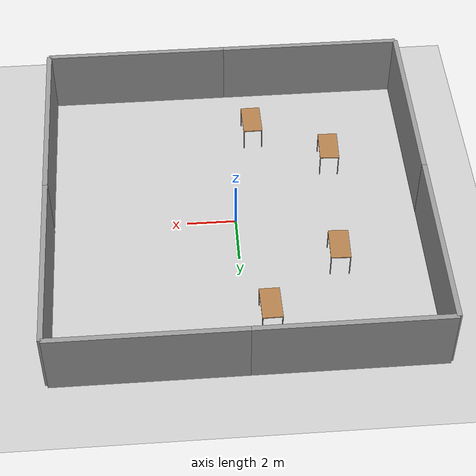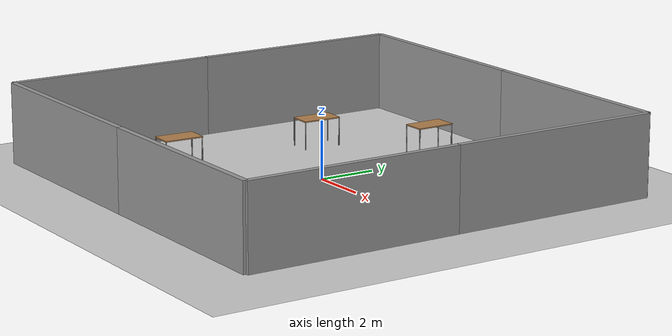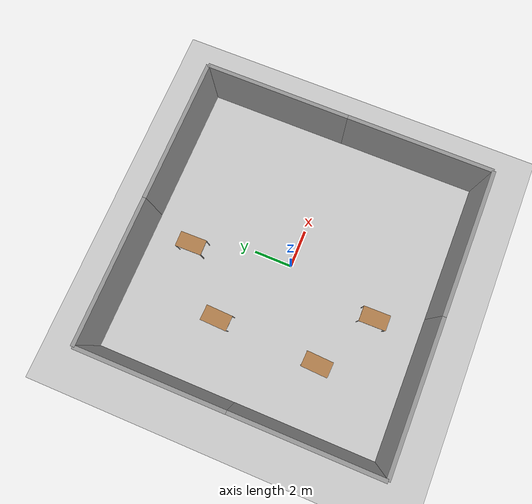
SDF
<sdf version="1.6">
 <world name="default">
  <light name="sun" type="directional">
   <pose>0 0 10 0 -0 0</pose>
   <diffuse>0.8 0.8 0.8 1</diffuse>
   <specular>0.1 0.1 0.1 1</specular>
   <attenuation>
    <range>1000</range>
    <constant>0.9</constant>
    <linear>0.01</linear>
    <quadratic>0.001</quadratic>
   </attenuation>
   <direction>-0.5 0.5 -1</direction>
  </light>
  <model name="ground_plane">
   <static>1</static>
   <link name="link">
    <collision name="collision">
     <geometry><plane><normal>0 0 1</normal><size>100 100</size></plane></geometry>
     <surface><friction><ode><mu>100</mu><mu2>50</mu2></ode></friction></surface>
    </collision>
    <visual name="visual">
     <cast_shadows>0</cast_shadows>
     <geometry><plane><normal>0 0 1</normal><size>100 100</size></plane></geometry>
     <material>
      <script><uri>file://media/materials/scripts/gazebo.material</uri><name>Gazebo/Grey</name></script>
     </material>
    </visual>
   </link>
  </model>
  <gravity>0 0 -9.8</gravity>
  <magnetic_field>6e-06 2.3e-05 -4.2e-05</magnetic_field>
  <atmosphere type="adiabatic"/>
  <physics name="default_physics" default="0" type="ode">
   <max_step_size>0.001</max_step_size>
   <real_time_factor>1</real_time_factor>
   <real_time_update_rate>1000</real_time_update_rate>
  </physics>
  <scene><ambient>0.4 0.4 0.4 1</ambient><background>0.7 0.7 0.7 1</background><shadows>1</shadows></scene>
  <spherical_coordinates>
   <surface_model>EARTH_WGS84</surface_model>
   <latitude_deg>0</latitude_deg>
   <longitude_deg>0</longitude_deg>
   <elevation>0</elevation>
   <heading_deg>0</heading_deg>
  </spherical_coordinates>
  <model name="grey_wall">
   <static>1</static>
   <link name="link">
    <pose>0 0 1.4 0 -0 0</pose>
    <collision name="collision"><geometry><box><size>7.5 0.2 2.8</size></box></geometry></collision>
    <visual name="visual">
     <cast_shadows>0</cast_shadows>
     <geometry><box><size>7.5 0.2 2.8</size></box></geometry>
     <material>
      <script>
       <uri>model://grey_wall/materials/scripts</uri>
       <uri>model://grey_wall/materials/textures</uri>
       <name>vrc/grey_wall</name>
      </script>
     </material>
    </visual>
   </link>
   <pose>3.75 7.5 0 0 -0 0</pose>
  </model>
  <model name="grey_wall_0">
   <static>1</static>
   <link name="link">
    <pose>0 0 1.4 0 -0 0</pose>
    <collision name="collision"><geometry><box><size>7.5 0.2 2.8</size></box></geometry></collision>
    <visual name="visual">
     <cast_shadows>0</cast_shadows>
     <geometry><box><size>7.5 0.2 2.8</size></box></geometry>
     <material>
      <script>
       <uri>model://grey_wall/materials/scripts</uri>
       <uri>model://grey_wall/materials/textures</uri>
       <name>vrc/grey_wall</name>
      </script>
     </material>
    </visual>
   </link>
   <pose>-3.75 7.5 0 0 -0 0</pose>
  </model>
  <model name="grey_wall_2">
   <static>1</static>
   <link name="link">
    <pose>0 0 1.4 0 -0 0</pose>
    <collision name="collision"><geometry><box><size>7.5 0.2 2.8</size></box></geometry></collision>
    <visual name="visual">
     <cast_shadows>0</cast_shadows>
     <geometry><box><size>7.5 0.2 2.8</size></box></geometry>
     <material>
      <script>
       <uri>model://grey_wall/materials/scripts</uri>
       <uri>model://grey_wall/materials/textures</uri>
       <name>vrc/grey_wall</name>
      </script>
     </material>
    </visual>
   </link>
   <pose>-3.75 -7.5 0 0 -0 0</pose>
  </model>
  <model name="grey_wall_3">
   <static>1</static>
   <link name="link">
    <pose>0 0 1.4 0 -0 0</pose>
    <collision name="collision"><geometry><box><size>7.5 0.2 2.8</size></box></geometry></collision>
    <visual name="visual">
     <cast_shadows>0</cast_shadows>
     <geometry><box><size>7.5 0.2 2.8</size></box></geometry>
     <material>
      <script>
       <uri>model://grey_wall/materials/scripts</uri>
       <uri>model://grey_wall/materials/textures</uri>
       <name>vrc/grey_wall</name>
      </script>
     </material>
    </visual>
   </link>
   <pose>3.75 -7.5 0 0 -0 0</pose>
  </model>
  <model name="grey_wall_4">
   <static>1</static>
   <link name="link">
    <pose>0 0 1.4 0 -0 0</pose>
    <collision name="collision"><geometry><box><size>7.5 0.2 2.8</size></box></geometry></collision>
    <visual name="visual">
     <cast_shadows>0</cast_shadows>
     <geometry><box><size>7.5 0.2 2.8</size></box></geometry>
     <material>
      <script>
       <uri>model://grey_wall/materials/scripts</uri>
       <uri>model://grey_wall/materials/textures</uri>
       <name>vrc/grey_wall</name>
      </script>
     </material>
    </visual>
   </link>
   <pose>-7.5 -3.75 0 0 -0 1.57</pose>
  </model>
  <model name="grey_wall_5">
   <static>1</static>
   <link name="link">
    <pose>0 0 1.4 0 -0 0</pose>
    <collision name="collision"><geometry><box><size>7.5 0.2 2.8</size></box></geometry></collision>
    <visual name="visual">
     <cast_shadows>0</cast_shadows>
     <geometry><box><size>7.5 0.2 2.8</size></box></geometry>
     <material>
      <script>
       <uri>model://grey_wall/materials/scripts</uri>
       <uri>model://grey_wall/materials/textures</uri>
       <name>vrc/grey_wall</name>
      </script>
     </material>
    </visual>
   </link>
   <pose>-7.5 3.75 0 0 -0 1.57</pose>
  </model>
  <model name="grey_wall_6">
   <static>1</static>
   <link name="link">
    <pose>0 0 1.4 0 -0 0</pose>
    <collision name="collision"><geometry><box><size>7.5 0.2 2.8</size></box></geometry></collision>
    <visual name="visual">
     <cast_shadows>0</cast_shadows>
     <geometry><box><size>7.5 0.2 2.8</size></box></geometry>
     <material>
      <script>
       <uri>model://grey_wall/materials/scripts</uri>
       <uri>model://grey_wall/materials/textures</uri>
       <name>vrc/grey_wall</name>
      </script>
     </material>
    </visual>
   </link>
   <pose>7.5 -3.75 0 0 -0 1.57</pose>
  </model>
  <model name="grey_wall_8">
   <static>1</static>
   <link name="link">
    <pose>0 0 1.4 0 -0 0</pose>
    <collision name="collision"><geometry><box><size>7.5 0.2 2.8</size></box></geometry></collision>
    <visual name="visual">
     <cast_shadows>0</cast_shadows>
     <geometry><box><size>7.5 0.2 2.8</size></box></geometry>
     <material>
      <script>
       <uri>model://grey_wall/materials/scripts</uri>
       <uri>model://grey_wall/materials/textures</uri>
       <name>vrc/grey_wall</name>
      </script>
     </material>
    </visual>
   </link>
   <pose>7.5 3.75 0 0 -0 1.57</pose>
  </model>
  <model name="table">
   <static>0</static>
   <link name="link">
    <collision name="surface">
     <pose>0 0 1 0 -0 0</pose>
     <geometry><box><size>1.5 0.8 0.03</size></box></geometry>
     <surface><friction><ode><mu>0.6</mu><mu2>0.6</mu2></ode></friction></surface>
    </collision>
    <visual name="visual1">
     <pose>0 0 1 0 -0 0</pose>
     <geometry><box><size>1.4 0.8 0.04</size></box></geometry>
     <material>
      <script><uri>file://media/materials/scripts/gazebo.material</uri><name>Gazebo/Wood</name></script>
     </material>
    </visual>
    <collision name="front_left_leg">
     <pose>0.68 0.38 0.5 0 -0 0</pose>
     <geometry><cylinder><radius>0.02</radius><length>1</length></cylinder></geometry>
    </collision>
    <visual name="front_left_leg">
     <pose>0.68 0.38 0.5 0 -0 0</pose>
     <geometry><cylinder><radius>0.02</radius><length>1</length></cylinder></geometry>
     <material>
      <script><uri>file://media/materials/scripts/gazebo.material</uri><name>Gazebo/Grey</name></script>
     </material>
    </visual>
    <collision name="front_right_leg">
     <pose>0.68 -0.38 0.5 0 -0 0</pose>
     <geometry><cylinder><radius>0.02</radius><length>1</length></cylinder></geometry>
    </collision>
    <visual name="front_right_leg">
     <pose>0.68 -0.38 0.5 0 -0 0</pose>
     <geometry><cylinder><radius>0.02</radius><length>1</length></cylinder></geometry>
     <material>
      <script><uri>file://media/materials/scripts/gazebo.material</uri><name>Gazebo/Grey</name></script>
     </material>
    </visual>
    <collision name="back_right_leg">
     <pose>-0.68 -0.38 0.5 0 -0 0</pose>
     <geometry><cylinder><radius>0.02</radius><length>1</length></cylinder></geometry>
    </collision>
    <visual name="back_right_leg">
     <pose>-0.68 -0.38 0.5 0 -0 0</pose>
     <geometry><cylinder><radius>0.02</radius><length>1</length></cylinder></geometry>
     <material>
      <script><uri>file://media/materials/scripts/gazebo.material</uri><name>Gazebo/Grey</name></script>
     </material>
    </visual>
    <collision name="back_left_leg">
     <pose>-0.68 0.38 0.5 0 -0 0</pose>
     <geometry><cylinder><radius>0.02</radius><length>1</length></cylinder></geometry>
    </collision>
    <visual name="back_left_leg">
     <pose>-0.68 0.38 0.5 0 -0 0</pose>
     <geometry><cylinder><radius>0.02</radius><length>1</length></cylinder></geometry>
     <material>
      <script><uri>file://media/materials/scripts/gazebo.material</uri><name>Gazebo/Grey</name></script>
     </material>
    </visual>
    <inertial>
     <inertia><ixx>1</ixx><ixy>0</ixy><ixz>0</ixz><iyy>1</iyy><iyz>0</iyz><izz>1</izz></inertia>
     <mass>1</mass>
    </inertial>
   </link>
   <pose>-1.02842 -4.86682 -1e-06 0 0 -1.55814</pose>
  </model>
  <model name="table_0">
   <static>0</static>
   <link name="link">
    <collision name="surface">
     <pose>0 0 1 0 -0 0</pose>
     <geometry><box><size>1.5 0.8 0.03</size></box></geometry>
     <surface><friction><ode><mu>0.6</mu><mu2>0.6</mu2></ode></friction></surface>
    </collision>
    <visual name="visual1">
     <pose>0 0 1 0 -0 0</pose>
     <geometry><box><size>1.4 0.8 0.04</size></box></geometry>
     <material>
      <script><uri>file://media/materials/scripts/gazebo.material</uri><name>Gazebo/Wood</name></script>
     </material>
    </visual>
    <collision name="front_left_leg">
     <pose>0.68 0.38 0.5 0 -0 0</pose>
     <geometry><cylinder><radius>0.02</radius><length>1</length></cylinder></geometry>
    </collision>
    <visual name="front_left_leg">
     <pose>0.68 0.38 0.5 0 -0 0</pose>
     <geometry><cylinder><radius>0.02</radius><length>1</length></cylinder></geometry>
     <material>
      <script><uri>file://media/materials/scripts/gazebo.material</uri><name>Gazebo/Grey</name></script>
     </material>
    </visual>
    <collision name="front_right_leg">
     <pose>0.68 -0.38 0.5 0 -0 0</pose>
     <geometry><cylinder><radius>0.02</radius><length>1</length></cylinder></geometry>
    </collision>
    <visual name="front_right_leg">
     <pose>0.68 -0.38 0.5 0 -0 0</pose>
     <geometry><cylinder><radius>0.02</radius><length>1</length></cylinder></geometry>
     <material>
      <script><uri>file://media/materials/scripts/gazebo.material</uri><name>Gazebo/Grey</name></script>
     </material>
    </visual>
    <collision name="back_right_leg">
     <pose>-0.68 -0.38 0.5 0 -0 0</pose>
     <geometry><cylinder><radius>0.02</radius><length>1</length></cylinder></geometry>
    </collision>
    <visual name="back_right_leg">
     <pose>-0.68 -0.38 0.5 0 -0 0</pose>
     <geometry><cylinder><radius>0.02</radius><length>1</length></cylinder></geometry>
     <material>
      <script><uri>file://media/materials/scripts/gazebo.material</uri><name>Gazebo/Grey</name></script>
     </material>
    </visual>
    <collision name="back_left_leg">
     <pose>-0.68 0.38 0.5 0 -0 0</pose>
     <geometry><cylinder><radius>0.02</radius><length>1</length></cylinder></geometry>
    </collision>
    <visual name="back_left_leg">
     <pose>-0.68 0.38 0.5 0 -0 0</pose>
     <geometry><cylinder><radius>0.02</radius><length>1</length></cylinder></geometry>
     <material>
      <script><uri>file://media/materials/scripts/gazebo.material</uri><name>Gazebo/Grey</name></script>
     </material>
    </visual>
    <inertial>
     <inertia><ixx>1</ixx><ixy>0</ixy><ixz>0</ixz><iyy>1</iyy><iyz>0</iyz><izz>1</izz></inertia>
     <mass>1</mass>
    </inertial>
   </link>
   <pose>-4.13511 -3.0521 -8e-06 0 0 -1.6166</pose>
  </model>
  <model name="table_1">
   <static>0</static>
   <link name="link">
    <collision name="surface">
     <pose>0 0 1 0 -0 0</pose>
     <geometry><box><size>1.5 0.8 0.03</size></box></geometry>
     <surface><friction><ode><mu>0.6</mu><mu2>0.6</mu2></ode></friction></surface>
    </collision>
    <visual name="visual1">
     <pose>0 0 1 0 -0 0</pose>
     <geometry><box><size>1.4 0.8 0.04</size></box></geometry>
     <material>
      <script><uri>file://media/materials/scripts/gazebo.material</uri><name>Gazebo/Wood</name></script>
     </material>
    </visual>
    <collision name="front_left_leg">
     <pose>0.68 0.38 0.5 0 -0 0</pose>
     <geometry><cylinder><radius>0.02</radius><length>1</length></cylinder></geometry>
    </collision>
    <visual name="front_left_leg">
     <pose>0.68 0.38 0.5 0 -0 0</pose>
     <geometry><cylinder><radius>0.02</radius><length>1</length></cylinder></geometry>
     <material>
      <script><uri>file://media/materials/scripts/gazebo.material</uri><name>Gazebo/Grey</name></script>
     </material>
    </visual>
    <collision name="front_right_leg">
     <pose>0.68 -0.38 0.5 0 -0 0</pose>
     <geometry><cylinder><radius>0.02</radius><length>1</length></cylinder></geometry>
    </collision>
    <visual name="front_right_leg">
     <pose>0.68 -0.38 0.5 0 -0 0</pose>
     <geometry><cylinder><radius>0.02</radius><length>1</length></cylinder></geometry>
     <material>
      <script><uri>file://media/materials/scripts/gazebo.material</uri><name>Gazebo/Grey</name></script>
     </material>
    </visual>
    <collision name="back_right_leg">
     <pose>-0.68 -0.38 0.5 0 -0 0</pose>
     <geometry><cylinder><radius>0.02</radius><length>1</length></cylinder></geometry>
    </collision>
    <visual name="back_right_leg">
     <pose>-0.68 -0.38 0.5 0 -0 0</pose>
     <geometry><cylinder><radius>0.02</radius><length>1</length></cylinder></geometry>
     <material>
      <script><uri>file://media/materials/scripts/gazebo.material</uri><name>Gazebo/Grey</name></script>
     </material>
    </visual>
    <collision name="back_left_leg">
     <pose>-0.68 0.38 0.5 0 -0 0</pose>
     <geometry><cylinder><radius>0.02</radius><length>1</length></cylinder></geometry>
    </collision>
    <visual name="back_left_leg">
     <pose>-0.68 0.38 0.5 0 -0 0</pose>
     <geometry><cylinder><radius>0.02</radius><length>1</length></cylinder></geometry>
     <material>
      <script><uri>file://media/materials/scripts/gazebo.material</uri><name>Gazebo/Grey</name></script>
     </material>
    </visual>
    <inertial>
     <inertia><ixx>1</ixx><ixy>0</ixy><ixz>0</ixz><iyy>1</iyy><iyz>0</iyz><izz>1</izz></inertia>
     <mass>1</mass>
    </inertial>
   </link>
   <pose>-0.960888 5.05299 -1e-06 -0 2e-06 1.58463</pose>
  </model>
  <model name="table_2">
   <static>0</static>
   <link name="link">
    <collision name="surface">
     <pose>0 0 1 0 -0 0</pose>
     <geometry><box><size>1.5 0.8 0.03</size></box></geometry>
     <surface><friction><ode><mu>0.6</mu><mu2>0.6</mu2></ode></friction></surface>
    </collision>
    <visual name="visual1">
     <pose>0 0 1 0 -0 0</pose>
     <geometry><box><size>1.4 0.8 0.04</size></box></geometry>
     <material>
      <script><uri>file://media/materials/scripts/gazebo.material</uri><name>Gazebo/Wood</name></script>
     </material>
    </visual>
    <collision name="front_left_leg">
     <pose>0.68 0.38 0.5 0 -0 0</pose>
     <geometry><cylinder><radius>0.02</radius><length>1</length></cylinder></geometry>
    </collision>
    <visual name="front_left_leg">
     <pose>0.68 0.38 0.5 0 -0 0</pose>
     <geometry><cylinder><radius>0.02</radius><length>1</length></cylinder></geometry>
     <material>
      <script><uri>file://media/materials/scripts/gazebo.material</uri><name>Gazebo/Grey</name></script>
     </material>
    </visual>
    <collision name="front_right_leg">
     <pose>0.68 -0.38 0.5 0 -0 0</pose>
     <geometry><cylinder><radius>0.02</radius><length>1</length></cylinder></geometry>
    </collision>
    <visual name="front_right_leg">
     <pose>0.68 -0.38 0.5 0 -0 0</pose>
     <geometry><cylinder><radius>0.02</radius><length>1</length></cylinder></geometry>
     <material>
      <script><uri>file://media/materials/scripts/gazebo.material</uri><name>Gazebo/Grey</name></script>
     </material>
    </visual>
    <collision name="back_right_leg">
     <pose>-0.68 -0.38 0.5 0 -0 0</pose>
     <geometry><cylinder><radius>0.02</radius><length>1</length></cylinder></geometry>
    </collision>
    <visual name="back_right_leg">
     <pose>-0.68 -0.38 0.5 0 -0 0</pose>
     <geometry><cylinder><radius>0.02</radius><length>1</length></cylinder></geometry>
     <material>
      <script><uri>file://media/materials/scripts/gazebo.material</uri><name>Gazebo/Grey</name></script>
     </material>
    </visual>
    <collision name="back_left_leg">
     <pose>-0.68 0.38 0.5 0 -0 0</pose>
     <geometry><cylinder><radius>0.02</radius><length>1</length></cylinder></geometry>
    </collision>
    <visual name="back_left_leg">
     <pose>-0.68 0.38 0.5 0 -0 0</pose>
     <geometry><cylinder><radius>0.02</radius><length>1</length></cylinder></geometry>
     <material>
      <script><uri>file://media/materials/scripts/gazebo.material</uri><name>Gazebo/Grey</name></script>
     </material>
    </visual>
    <inertial>
     <inertia><ixx>1</ixx><ixy>0</ixy><ixz>0</ixz><iyy>1</iyy><iyz>0</iyz><izz>1</izz></inertia>
     <mass>1</mass>
    </inertial>
   </link>
   <pose>-3.91997 2.34927 -1e-06 0 2e-06 1.53367</pose>
  </model>
 </world>
</sdf>
